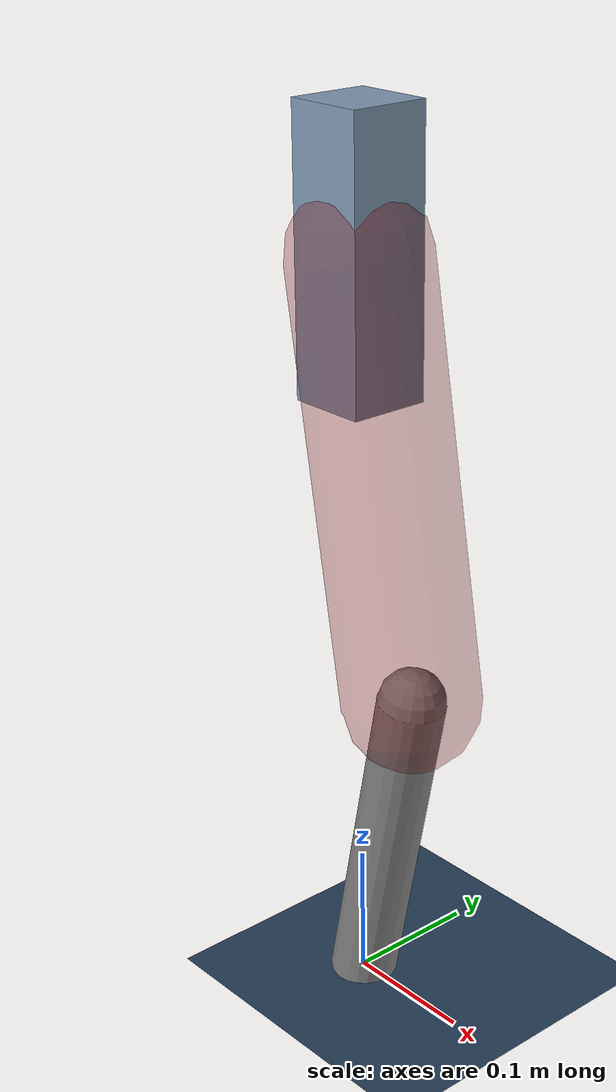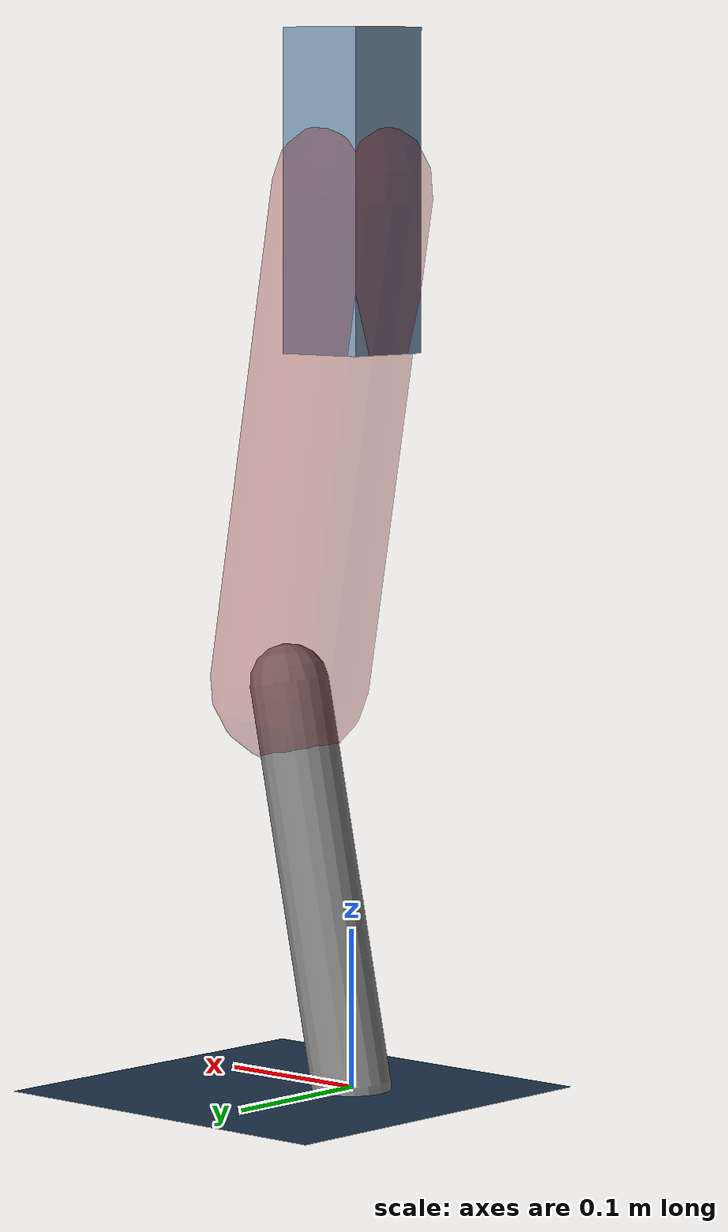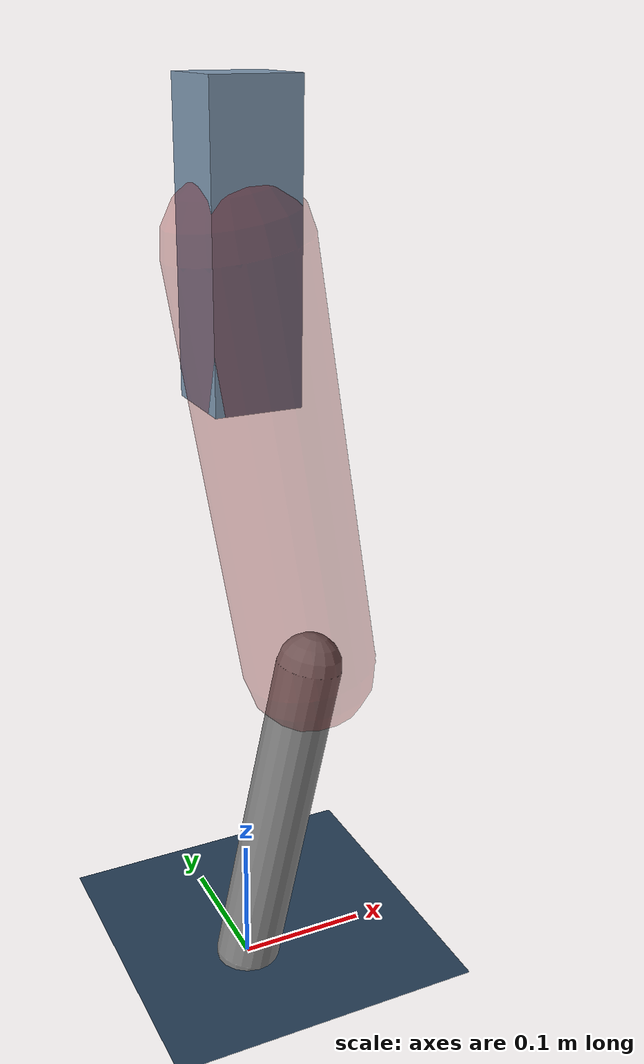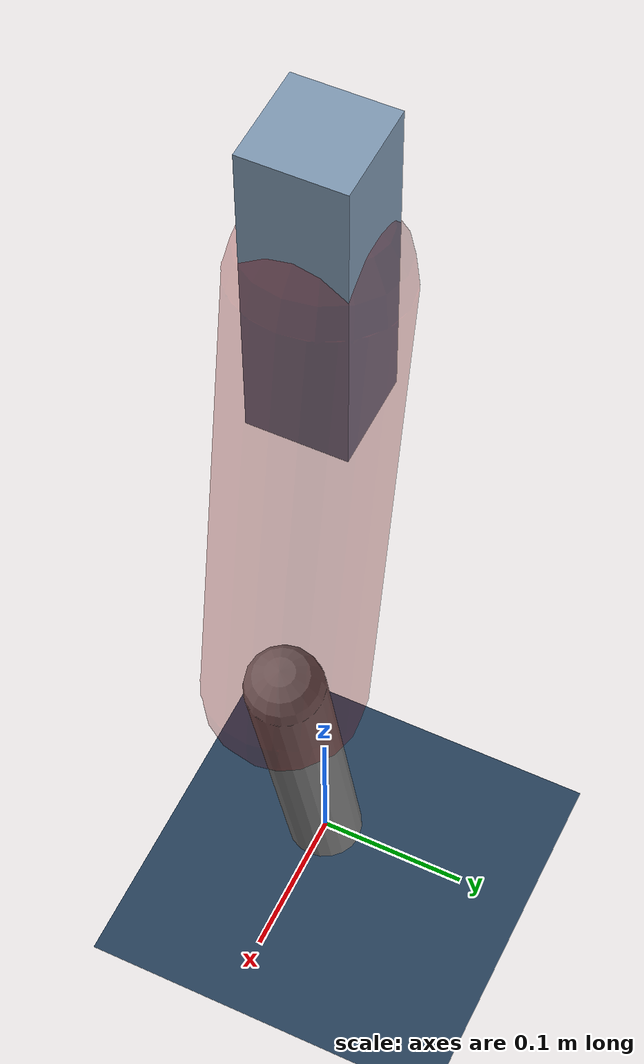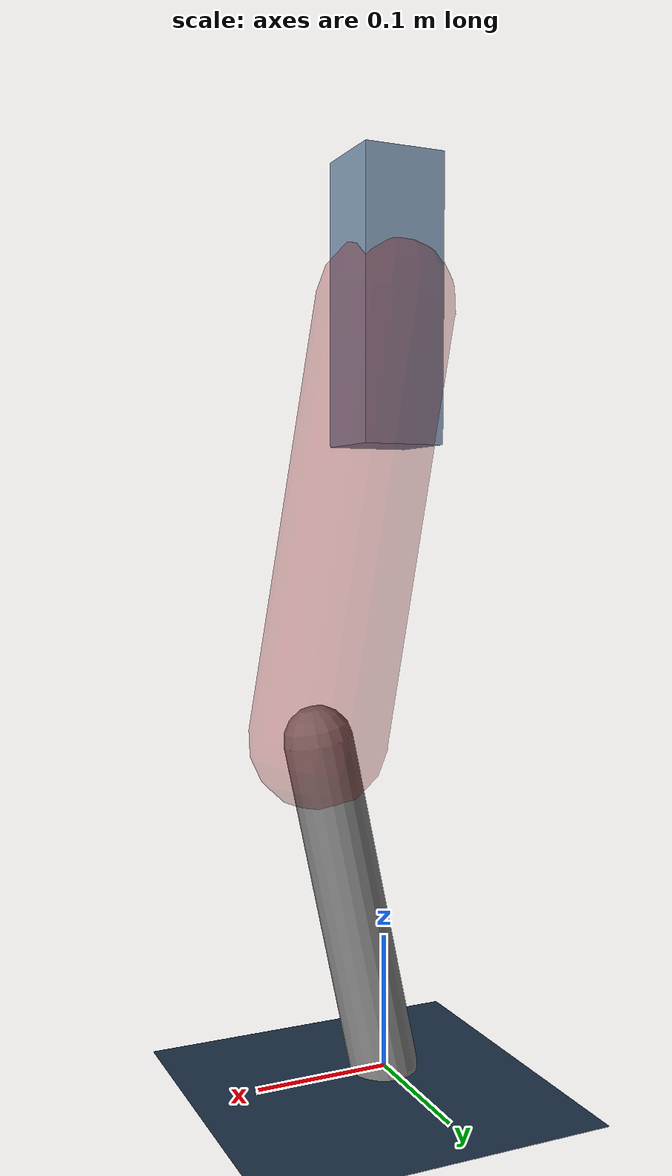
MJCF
<mujoco model="Hopper2D">
	<compiler inertiafromgeom="true" angle="radian" />
	<option timestep="0.001" integrator="implicit" cone="elliptic" solver="Newton" tolerance="1e-10" />

	<default>
		<geom contype="1" conaffinity="1" condim="3" friction="2 0.005 0.0001" solref="0.005 1" />
		<joint limited="true" damping="0.1" />
	</default>

	<asset>
		<texture name="skybox" type="skybox" builtin="gradient" rgb1=".4 .6 .8" rgb2="0 0 0" width="800" height="800" />
		<texture name="grid" type="2d" builtin="checker" rgb1=".1 .2 .3" rgb2=".2 .3 .4" width="300" height="300" mark="edge" markrgb=".2 .3 .4" />
		<material name="ground" texture="grid" texrepeat="1 1" texuniform="true" reflectance="0.1" />
		<material name="leg" rgba="0.5 0.6 0.7 1" />
	</asset>

	<worldbody>

		<geom name="floor" type="plane" size="5 5 0.25" material="ground" />

		<light directional="false" diffuse="0.8 0.8 0.8" specular="0.3 0.3 0.3" pos="0 0 2" dir="0 0 -1" />
		<light mode="targetbodycom" target="base" directional="false" diffuse="0.8 0.8 0.8" specular="0.3 0.3 0.3" pos="0 0 2" dir="0 0 -1" />

		<camera name="fixed" pos="0 -2 1" xyaxes="1 0 0 0 0 1" />
		<camera name="tracking" mode="trackcom" pos="0 -3 1" />

		<body name="root" pos="0 0 0.5586723736239629">
			<joint name="slide_x" type="slide" axis="1 0 0" range="-100 100" />
			<joint name="slide_z" type="slide" axis="0 0 1" range="0 10" />

			<body name="base" pos="0 0 0">
				<geom name="torso" type="box" size="0.03 0.03 0.1" mass="3.505" material="leg" />

				<body name="link1" pos="0 0 0" euler="0 1.4011920830423183 0">
					<joint type="hinge" axis="0 -1 0" pos="0 0 0" name="hinge1" limited="true" range="-3.14 3.14" stiffness="0" damping="0.1" />
					<geom name="thigh" type="capsule" fromto="0 0 0 0.3128726931214205 0 0" size="0.05" rgba="0.5 0 0 0.3" mass="1.0237435407399775" />

					<body name="link2" pos="0.3128726931214205 0 0" euler="0 0.37755225217254207 0">
						<joint type="hinge" axis="0 -1 0" pos="0 0 0" name="hinge2" limited="true" range="-3.14 3.14" stiffness="0" damping="0.1" />
						<geom name="shank" type="capsule" fromto="0 0 0 0.2557996805025425 0 0" size="0.025" mass="0.44731971245228824" />

					</body>
				</body>
			</body>
		</body>
	</worldbody>

	<actuator>
		<motor name="torque1" joint="hinge1" ctrlrange="-118.42606807989505 118.42606807989505" ctrllimited="true" gear="1" />
		<motor name="torque2" joint="hinge2" ctrlrange="-163.63124027613986 163.63124027613986" ctrllimited="true" gear="1" />
	</actuator>
</mujoco>
